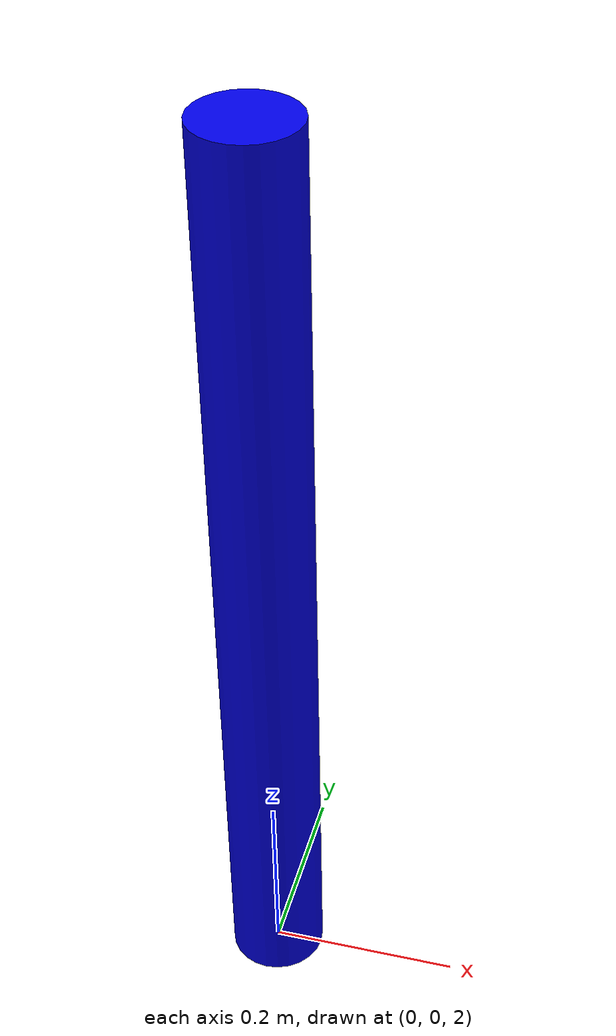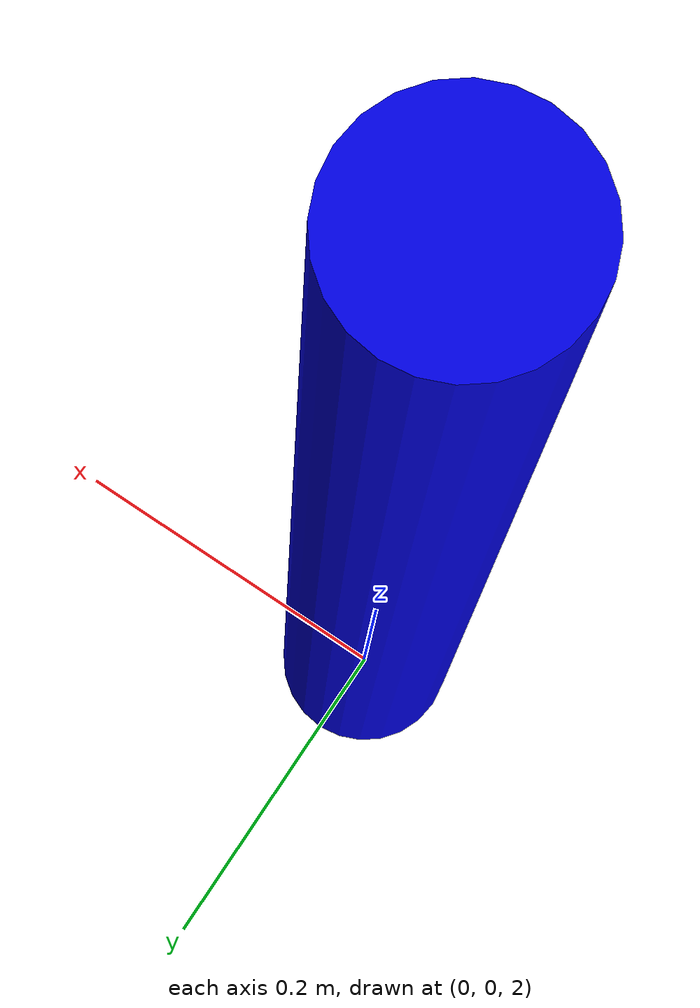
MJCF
<mujoco model="Double Pendulum scene">

  <include file="mjDblPnd.xml"/>

  <statistic center="0.3 0 0.4" extent="1"/>

  <visual>
    <headlight diffuse="0.6 0.6 0.6" ambient="0.3 0.3 0.3" specular="0 0 0"/>
    <rgba haze="0.15 0.25 0.35 1"/>
    <global azimuth="120" elevation="-20"/>
  </visual>

  <asset>
    <texture type="skybox" builtin="gradient" rgb1="0.3 0.5 0.7" rgb2="0 0 0" width="512" height="3072"/>
    <texture type="2d" name="groundplane" builtin="checker" mark="edge" rgb1="0.2 0.3 0.4" rgb2="0.1 0.2 0.3"
      markrgb="0.8 0.8 0.8" width="300" height="300"/>
    <material name="groundplane" texture="groundplane" texuniform="true" texrepeat="5 5" reflectance="0.2"/>
  </asset>

  <worldbody>
    <light pos="0 0 1.5" dir="0 0 -1" directional="true"/>
    <geom name="floor" size="0 0 0.05" type="plane" material="groundplane"/>
  </worldbody>

</mujoco>

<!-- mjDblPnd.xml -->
<mujoco model="linkage">
	<compiler angle="radian" autolimits="true"/>
	<option timestep="0.001" integrator="RK4">
	<flag sensornoise="enable" energy="enable"/>
	</option>
	<worldbody>
	<!-- First link -->
    	<body name="link A" pos="0 0 2.5" >
		<inertial pos="0 0 0.25" mass="0.1" diaginertia="0.002 0.002 0.002"/>
    	<joint type="hinge" name="joint A" pos="0 0 0.5" axis="0 1 0"/>
    	<geom size="0.05 0.5" type="cylinder" rgba="0 0 0.9 1"/>
	<!-- Secind link (child) -->
    		<body name="link B" pos="0 0 0" >
			<inertial pos="0 0 0.25" mass="0.1" diaginertia="0.002 0.002 0.002"/>
        	<joint type="hinge" name="joint B" pos="0 0 -0.5" axis="0 1 0"/>
        	<geom size="0.05 0.5" type="cylinder" rgba="0 0.9 0 1"/>
      		</body>
    	</body>
  	</worldbody>
	<actuator>
		<motor joint="joint A" gear = "1" ctrlrange="-100 100"/>
	</actuator>
	<actuator>
		<motor joint="joint B" gear = "1" ctrlrange="-100 100"/>
	</actuator>
</mujoco>
